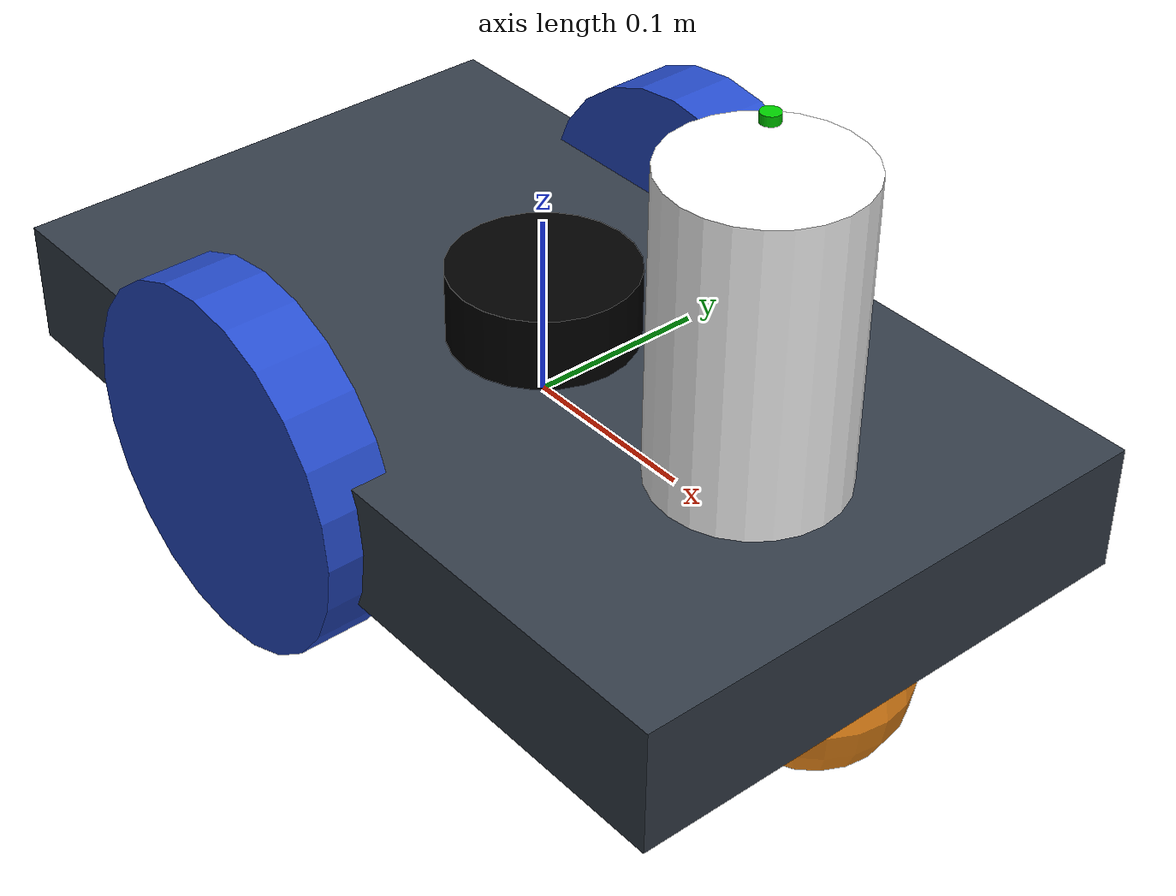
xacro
<?xml version="1.0" ?>
<!-- working_file -->
<robot name="savvyage" xmlns:xacro="http://www.ros.org/wiki/xacro" >

  <xacro:include filename="$(find rover_description)/urdf/materials.xacro" />
  <xacro:include filename="$(find rover_description)/urdf/bot/bot.gazebo" />
  <xacro:include filename="$(find rover_description)/urdf/bot/macros.xacro" />
  <xacro:property name="camera_link" value="0.08" /> <!-- Size of square 'camera' box -->

  <link name="link_chassis">
    <!-- pose and inertial -->
    <pose>0 0 0.1 0 0 0</pose>

    <inertial>
      <mass value="20"/>
      <origin rpy="0 0 0" xyz="0 0 0.1"/>
      <inertia ixx="0.0395416666667" ixy="0" ixz="0" iyy="0.106208333333" iyz="0" izz="0.106208333333"/>
    </inertial>

    <collision name="collision_chassis">
      <geometry>
        <box size="0.5 0.3 0.07"/>
      </geometry>
    </collision>

    <visual>
      <origin rpy="0 0 0" xyz="0 0 0"/>
      <geometry>
        <box size="0.5 0.3 0.07"/>
      </geometry>
      <material name="blue"/>
    </visual>

    <!-- caster front -->
    <collision name="caster_front_collision">
      <origin rpy=" 0 0 0" xyz="0.35 0 -0.05"/>
      <geometry>
        <sphere radius="0.05"/>
      </geometry>
      <surface>
        <friction>
          <ode>
            <mu>0</mu>
            <mu2>0</mu2>
            <slip1>1.0</slip1>
            <slip2>1.0</slip2>
          </ode>
        </friction>
      </surface>
    </collision>
    <visual name="caster_front_visual">
      <origin rpy=" 0 0 0" xyz="0.2 0 -0.05"/>
      <geometry>
        <sphere radius="0.05"/>
      </geometry>
    </visual>
    </link>

  <link name="sensor_laser">
    <inertial>
      <origin xyz="0 0 0" rpy="0 0 0" />
      <mass value="1" />
      <!-- RANDOM INERTIA BELOW -->
      <inertia ixx="0.02" ixy="0" ixz="0" iyy="0.02" iyz="0" izz="0.02"/>
    </inertial>

    <visual>
      <origin xyz="0 0 0" rpy="0 0 0" />
      <geometry>
        <cylinder radius="0.05" length="0.2"/>
      </geometry>
      <material name="white" />
    </visual>

    <collision>
      <origin xyz="0 0 0" rpy="0 0 0"/>
      <geometry>
        <cylinder radius="0.05" length="0.2"/>
      </geometry>
    </collision>
  </link>

  <joint name="joint_sensor_laser" type="fixed">
    <origin xyz="0.15 0 0.1" rpy="0 0 0"/>
    <parent link="link_chassis"/>
    <child link="sensor_laser"/>
  </joint>

  <!-- Camera -->
  <link name="camera_link">
    <collision>
      <origin xyz="0 0 0" rpy="0 0 0"/>
      <geometry>
        <cylinder radius="0.005" length="0.005"/>
      </geometry>
    </collision>

    <visual>
      <origin xyz="0 0 0" rpy="0 0 0"/>
      <geometry>
        <cylinder radius="0.005" length="0.005"/>
      </geometry>
      <material name="green"/>
    </visual>

    <inertial>
      <mass value="1e-5" />
      <origin xyz="0 0 0" rpy="0 0 0"/>
      <inertia ixx="1e-6" ixy="0" ixz="0" iyy="1e-6" iyz="0" izz="1e-6" />
    </inertial>
  </link>

  <joint name="camera_joint" type="fixed">
    <axis xyz="0 1 0" />
    <origin xyz="0.15 0 0.225" rpy="0 0 0"/>
    <parent link="link_chassis"/>
    <child link="camera_link"/>
  </joint>

  <!-- IMU -->
  <link name="imu_link">
    <collision>
      <origin xyz="0 0 0" rpy="0 0 0"/>
      <geometry>
        <cylinder radius="0.05" length="0.05"/>
      </geometry>
    </collision>

    <visual>
      <origin xyz="0 0 0" rpy="0 0 0"/>
      <geometry>
        <cylinder radius="0.05" length="0.05"/>
      </geometry>
      <material name="black"/>
    </visual>

    <inertial>
      <mass value="1e-5" />
      <origin xyz="0 0 0" rpy="0 0 0"/>
      <inertia ixx="1e-6" ixy="0" ixz="0" iyy="1e-6" iyz="0" izz="1e-6" />
    </inertial>
  </link>

  <joint name="imu_joint" type="fixed">
    <axis xyz="0 1 0" />
    <origin xyz="0 0 0.05" rpy="0 0 0"/>
    <parent link="link_chassis"/>
    <child link="imu_link"/>
  </joint>

  <!-- Create wheel right -->
  <xacro:link_wheel name= "link_right_wheel" />

  <!--   Joint for right wheel  -->
  <xacro:joint_wheel name="joint_right_wheel"  child="link_right_wheel"  origin_xyz="-0.05 -0.15 0"  />

  <!-- Left Wheel link -->
  <xacro:link_wheel name= "link_left_wheel" />

  <!--   Joint for right wheel  -->
  <xacro:joint_wheel name="joint_left_wheel"   child="link_left_wheel"   origin_xyz="-0.05 0.15 0"  />

</robot>

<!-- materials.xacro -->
// No changes were made
<?xml version="1.0" ?>

<robot>
  <material name="black">
    <color rgba="0.0 0.0 0.0 1.0"/>
  </material>
  <material name="blue">
    <color rgba="0.203125 0.23828125 0.28515625 1.0"/>
  </material>
  <material name="green">
    <color rgba="0.0 0.8 0.0 1.0"/>
  </material>
  <material name="grey">
    <color rgba="0.2 0.2 0.2 1.0"/>
  </material>
  <material name="orange">
    <color rgba="1.0 0.423529411765 0.0392156862745 1.0"/>
  </material>
  <material name="brown">
    <color rgba="0.870588235294 0.811764705882 0.764705882353 1.0"/>
  </material>
  <material name="red">
    <color rgba="0.80078125 0.12890625 0.1328125 1.0"/>
  </material>
  <material name="white">
    <color rgba="1.0 1.0 1.0 1.0"/>
  </material>

</robot>

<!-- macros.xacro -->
<!-- used inside bot -->
<robot xmlns:xacro="http://www.ros.org/wiki/xacro">
    <xacro:macro name="link_wheel" params="name">
        <link name="${name}">
            <inertial>
              <mass value="0.2"/>
              <origin rpy="0 1.5707 1.5707" xyz="0 0 0"/>
              <inertia ixx="0.000526666666667" ixy="0" ixz="0" iyy="0.000526666666667" iyz="0" izz="0.001"/>
            </inertial>
            <collision name="${name}_collision">
              <origin rpy="0 1.5707 1.5707" xyz="0 0 0"/>
              <geometry>
                <cylinder length="0.04" radius="0.1"/>
              </geometry>
            </collision>
            <visual name="${name}_visual">
              <origin rpy="0 1.5707 1.5707" xyz="0 0 0"/>
              <geometry>
                <cylinder length="0.04" radius="0.1"/>
              </geometry>
            </visual>
        </link>
    </xacro:macro>

    <xacro:macro name="joint_wheel" params="name child origin_xyz">
      <joint name="${name}" type="continuous">
        <origin rpy="0 0 0" xyz="${origin_xyz}"/>
        <child link="${child}"/>
        <parent link="link_chassis"/>
        <axis rpy="0 0 0" xyz="0 2 0"/>
        <limit effort="10000" velocity="1000"/>
        <dynamics damping="1.0" friction="1.0"/>
      </joint>
    </xacro:macro>

    <xacro:macro name="cylinder_inertia" params="mass r l">
      <inertia ixx="${mass*(3*r*r+l*l)/12}" ixy = "0" ixz = "0"
                iyy="${mass*(3*r*r+l*l)/12}" iyz = "0" izz="${mass*(r*r)/2}" />
    </xacro:macro>

</robot>
